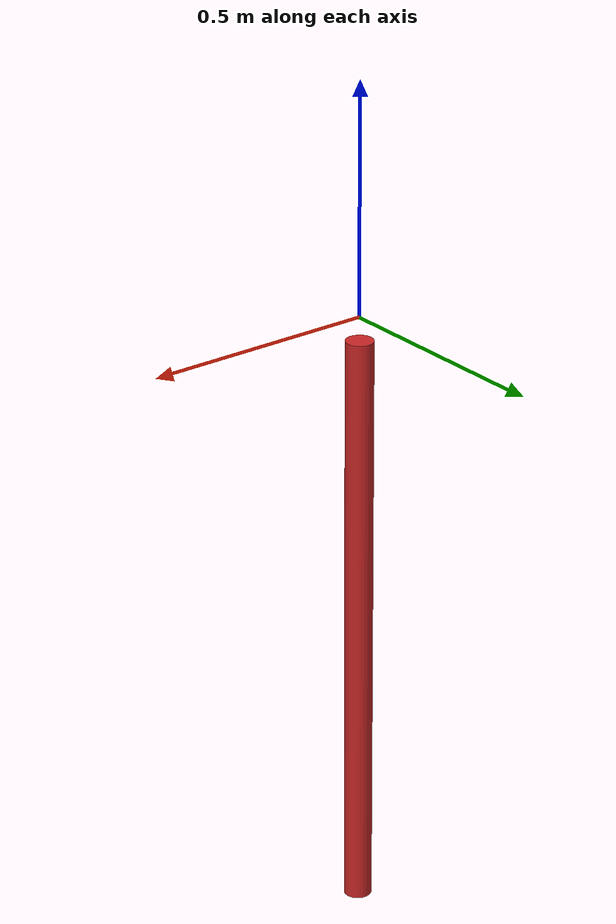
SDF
<?xml version='1.0'?>
<sdf version='1.5'>

  <model name='buoys'>
    <pose>0 0 0 0 0 0</pose>
    <self_collide> 0 </self_collide>
    <static> 1</static>

    <link name='red_rod'>
        <pose>0 0 -0.7 0 0 0</pose>
        <visual name='red_rod_vis'>
          <geometry>
            <cylinder>
              <radius>0.03</radius>
              <length>1.3</length>
            </cylinder>
          </geometry>
        <material>
          <script>
            <uri>file://media/materials/scripts/gazebo.material</uri>
            <name>Gazebo/RedBright</name>
          </script>
          <diffuse>0.3 0.3 0.3 1</diffuse>
        </material>
        </visual>
        <collision name='red_rod_collide'>
            <geometry>
                <cylinder>
                    <radius>0.03</radius>
                    <length>1.3</length>
                </cylinder>
            </geometry>
        </collision>
    </link>

  </model>
</sdf>
